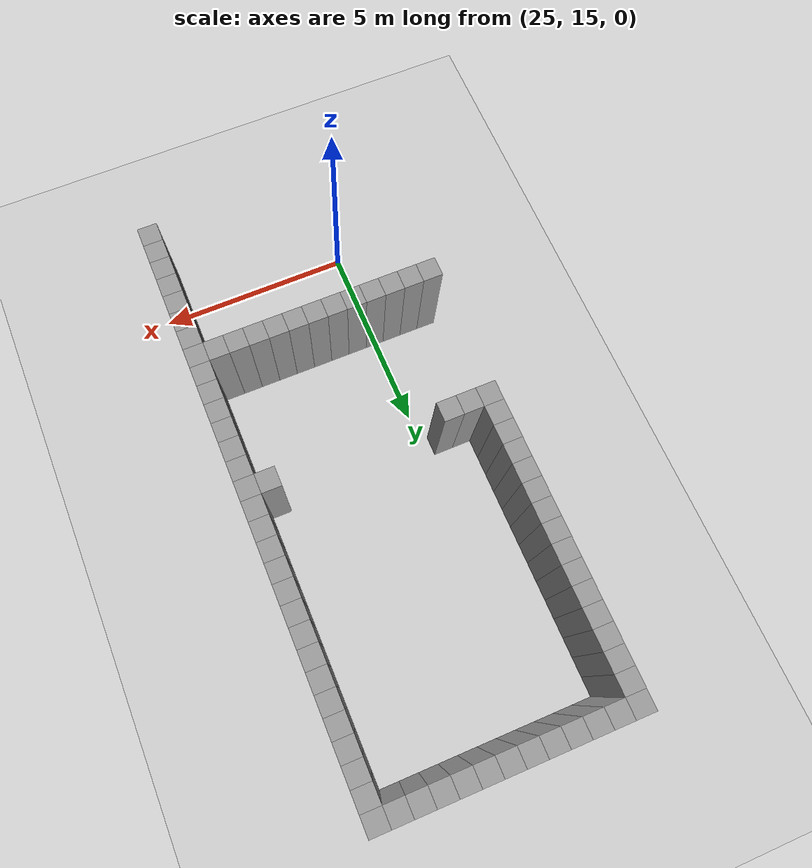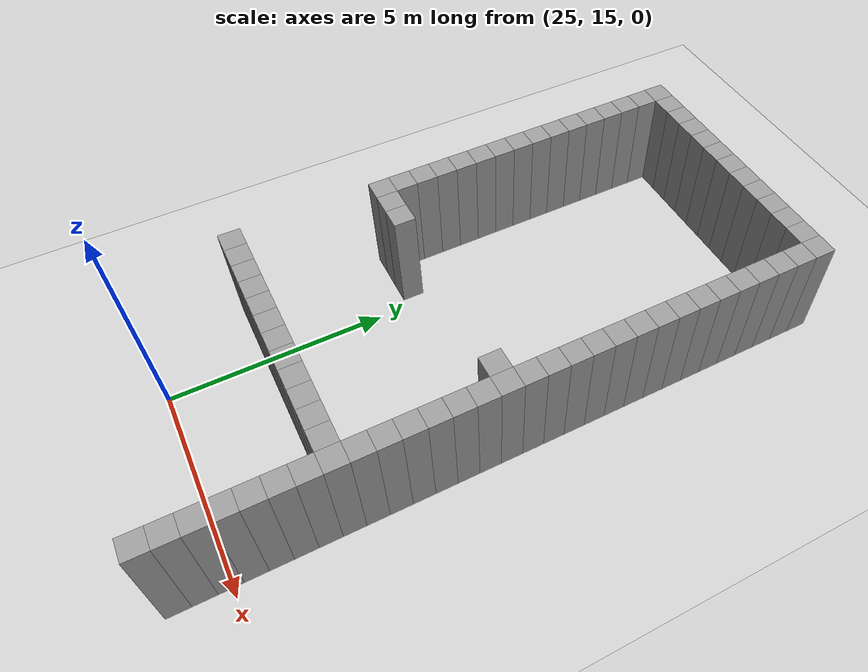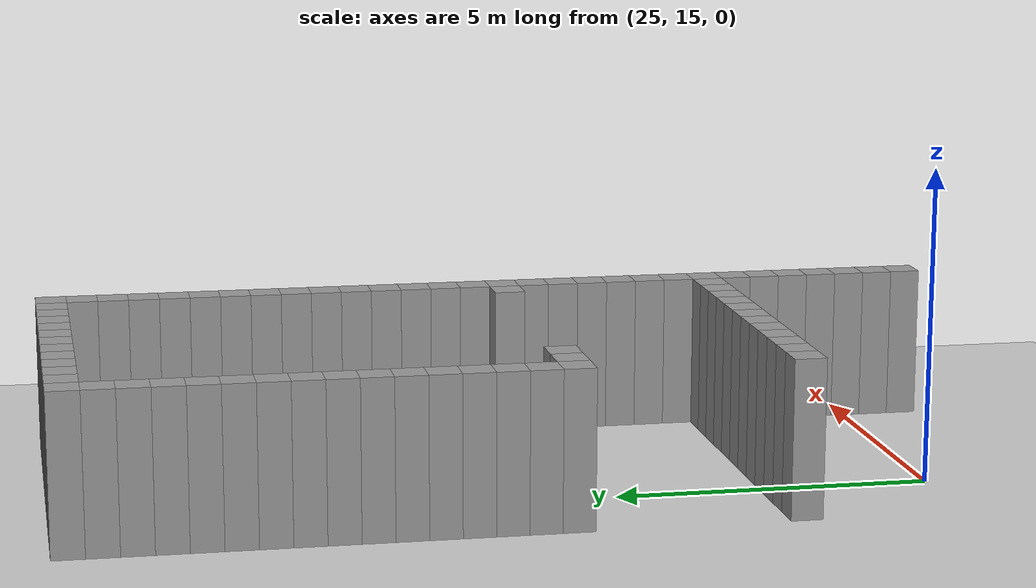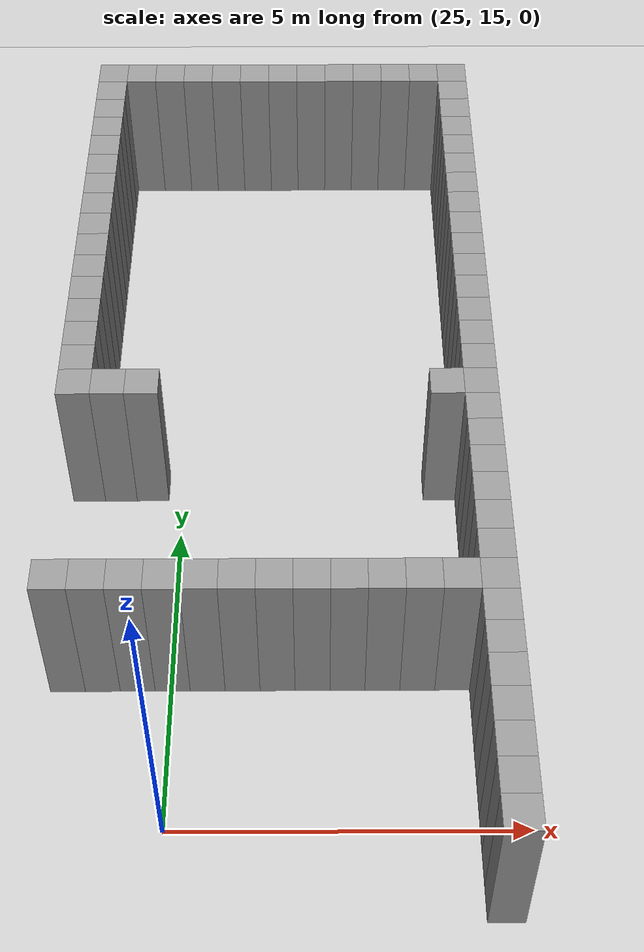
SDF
<sdf version="1.7">
 <world name="default">
  <model name="ground_plane">
   <static>1</static>
   <link name="link">
    <collision name="collision">
     <geometry><plane><normal>0 0 1</normal><size>100 100</size></plane></geometry>
     <surface>
      <contact><collide_bitmask>65535</collide_bitmask></contact>
      <friction><ode><mu>100</mu><mu2>50</mu2></ode></friction>
     </surface>
    </collision>
    <visual name="visual">
     <cast_shadows>0</cast_shadows>
     <geometry><plane><normal>0 0 1</normal><size>100 100</size></plane></geometry>
     <material>
      <script><uri>file://media/materials/scripts/gazebo.material</uri><name>Gazebo/Grey</name></script>
     </material>
    </visual>
   </link>
  </model>
  <model name="image1">
   <pose>-0.980925 -1.04264 0 0 -0 0</pose>
   <link name="Wall_373">
    <collision name="Wall_373_Collision">
     <geometry><box><size>0.5 0.5 2.5</size></box></geometry>
     <pose>0 0 1.25 0 -0 0</pose>
    </collision>
    <visual name="Wall_373_Visual">
     <pose>0 0 1.25 0 -0 0</pose>
     <geometry><box><size>0.5 0.5 2.5</size></box></geometry>
     <material>
      <script><uri>file://media/materials/scripts/gazebo.material</uri><name>Gazebo/Grey</name></script>
      <ambient>1 1 1 1</ambient>
     </material>
     <meta><layer>0</layer></meta>
    </visual>
    <pose>24.5 18.5 0 0 -0 0</pose>
   </link>
   <link name="Wall_374">
    <collision name="Wall_374_Collision">
     <geometry><box><size>0.5 0.5 2.5</size></box></geometry>
     <pose>0 0 1.25 0 -0 0</pose>
    </collision>
    <visual name="Wall_374_Visual">
     <pose>0 0 1.25 0 -0 0</pose>
     <geometry><box><size>0.5 0.5 2.5</size></box></geometry>
     <material>
      <script><uri>file://media/materials/scripts/gazebo.material</uri><name>Gazebo/Grey</name></script>
      <ambient>1 1 1 1</ambient>
     </material>
     <meta><layer>0</layer></meta>
    </visual>
    <pose>24.5 22 0 0 -0 0</pose>
   </link>
   <link name="Wall_375">
    <collision name="Wall_375_Collision">
     <geometry><box><size>0.5 0.5 2.5</size></box></geometry>
     <pose>0 0 1.25 0 -0 0</pose>
    </collision>
    <visual name="Wall_375_Visual">
     <pose>0 0 1.25 0 -0 0</pose>
     <geometry><box><size>0.5 0.5 2.5</size></box></geometry>
     <material>
      <script><uri>file://media/materials/scripts/gazebo.material</uri><name>Gazebo/Grey</name></script>
      <ambient>1 1 1 1</ambient>
     </material>
     <meta><layer>0</layer></meta>
    </visual>
    <pose>24.5 22.5 0 0 -0 0</pose>
   </link>
   <link name="Wall_376">
    <collision name="Wall_376_Collision">
     <geometry><box><size>0.5 0.5 2.5</size></box></geometry>
     <pose>0 0 1.25 0 -0 0</pose>
    </collision>
    <visual name="Wall_376_Visual">
     <pose>0 0 1.25 0 -0 0</pose>
     <geometry><box><size>0.5 0.5 2.5</size></box></geometry>
     <material>
      <script><uri>file://media/materials/scripts/gazebo.material</uri><name>Gazebo/Grey</name></script>
      <ambient>1 1 1 1</ambient>
     </material>
     <meta><layer>0</layer></meta>
    </visual>
    <pose>24.5 23 0 0 -0 0</pose>
   </link>
   <link name="Wall_377">
    <collision name="Wall_377_Collision">
     <geometry><box><size>0.5 0.5 2.5</size></box></geometry>
     <pose>0 0 1.25 0 -0 0</pose>
    </collision>
    <visual name="Wall_377_Visual">
     <pose>0 0 1.25 0 -0 0</pose>
     <geometry><box><size>0.5 0.5 2.5</size></box></geometry>
     <material>
      <script><uri>file://media/materials/scripts/gazebo.material</uri><name>Gazebo/Grey</name></script>
      <ambient>1 1 1 1</ambient>
     </material>
     <meta><layer>0</layer></meta>
    </visual>
    <pose>24.5 23.5 0 0 -0 0</pose>
   </link>
   <link name="Wall_378">
    <collision name="Wall_378_Collision">
     <geometry><box><size>0.5 0.5 2.5</size></box></geometry>
     <pose>0 0 1.25 0 -0 0</pose>
    </collision>
    <visual name="Wall_378_Visual">
     <pose>0 0 1.25 0 -0 0</pose>
     <geometry><box><size>0.5 0.5 2.5</size></box></geometry>
     <material>
      <script><uri>file://media/materials/scripts/gazebo.material</uri><name>Gazebo/Grey</name></script>
      <ambient>1 1 1 1</ambient>
     </material>
     <meta><layer>0</layer></meta>
    </visual>
    <pose>24.5 24 0 0 -0 0</pose>
   </link>
   <link name="Wall_379">
    <collision name="Wall_379_Collision">
     <geometry><box><size>0.5 0.5 2.5</size></box></geometry>
     <pose>0 0 1.25 0 -0 0</pose>
    </collision>
    <visual name="Wall_379_Visual">
     <pose>0 0 1.25 0 -0 0</pose>
     <geometry><box><size>0.5 0.5 2.5</size></box></geometry>
     <material>
      <script><uri>file://media/materials/scripts/gazebo.material</uri><name>Gazebo/Grey</name></script>
      <ambient>1 1 1 1</ambient>
     </material>
     <meta><layer>0</layer></meta>
    </visual>
    <pose>24.5 24.5 0 0 -0 0</pose>
   </link>
   <link name="Wall_380">
    <collision name="Wall_380_Collision">
     <geometry><box><size>0.5 0.5 2.5</size></box></geometry>
     <pose>0 0 1.25 0 -0 0</pose>
    </collision>
    <visual name="Wall_380_Visual">
     <pose>0 0 1.25 0 -0 0</pose>
     <geometry><box><size>0.5 0.5 2.5</size></box></geometry>
     <material>
      <script><uri>file://media/materials/scripts/gazebo.material</uri><name>Gazebo/Grey</name></script>
      <ambient>1 1 1 1</ambient>
     </material>
     <meta><layer>0</layer></meta>
    </visual>
    <pose>24.5 25 0 0 -0 0</pose>
   </link>
   <link name="Wall_381">
    <collision name="Wall_381_Collision">
     <geometry><box><size>0.5 0.5 2.5</size></box></geometry>
     <pose>0 0 1.25 0 -0 0</pose>
    </collision>
    <visual name="Wall_381_Visual">
     <pose>0 0 1.25 0 -0 0</pose>
     <geometry><box><size>0.5 0.5 2.5</size></box></geometry>
     <material>
      <script><uri>file://media/materials/scripts/gazebo.material</uri><name>Gazebo/Grey</name></script>
      <ambient>1 1 1 1</ambient>
     </material>
     <meta><layer>0</layer></meta>
    </visual>
    <pose>24.5 25.5 0 0 -0 0</pose>
   </link>
   <link name="Wall_382">
    <collision name="Wall_382_Collision">
     <geometry><box><size>0.5 0.5 2.5</size></box></geometry>
     <pose>0 0 1.25 0 -0 0</pose>
    </collision>
    <visual name="Wall_382_Visual">
     <pose>0 0 1.25 0 -0 0</pose>
     <geometry><box><size>0.5 0.5 2.5</size></box></geometry>
     <material>
      <script><uri>file://media/materials/scripts/gazebo.material</uri><name>Gazebo/Grey</name></script>
      <ambient>1 1 1 1</ambient>
     </material>
     <meta><layer>0</layer></meta>
    </visual>
    <pose>24.5 26 0 0 -0 0</pose>
   </link>
   <link name="Wall_383">
    <collision name="Wall_383_Collision">
     <geometry><box><size>0.5 0.5 2.5</size></box></geometry>
     <pose>0 0 1.25 0 -0 0</pose>
    </collision>
    <visual name="Wall_383_Visual">
     <pose>0 0 1.25 0 -0 0</pose>
     <geometry><box><size>0.5 0.5 2.5</size></box></geometry>
     <material>
      <script><uri>file://media/materials/scripts/gazebo.material</uri><name>Gazebo/Grey</name></script>
      <ambient>1 1 1 1</ambient>
     </material>
     <meta><layer>0</layer></meta>
    </visual>
    <pose>24.5 26.5 0 0 -0 0</pose>
   </link>
   <link name="Wall_384">
    <collision name="Wall_384_Collision">
     <geometry><box><size>0.5 0.5 2.5</size></box></geometry>
     <pose>0 0 1.25 0 -0 0</pose>
    </collision>
    <visual name="Wall_384_Visual">
     <pose>0 0 1.25 0 -0 0</pose>
     <geometry><box><size>0.5 0.5 2.5</size></box></geometry>
     <material>
      <script><uri>file://media/materials/scripts/gazebo.material</uri><name>Gazebo/Grey</name></script>
      <ambient>1 1 1 1</ambient>
     </material>
     <meta><layer>0</layer></meta>
    </visual>
    <pose>24.5 27 0 0 -0 0</pose>
   </link>
   <link name="Wall_385">
    <collision name="Wall_385_Collision">
     <geometry><box><size>0.5 0.5 2.5</size></box></geometry>
     <pose>0 0 1.25 0 -0 0</pose>
    </collision>
    <visual name="Wall_385_Visual">
     <pose>0 0 1.25 0 -0 0</pose>
     <geometry><box><size>0.5 0.5 2.5</size></box></geometry>
     <material>
      <script><uri>file://media/materials/scripts/gazebo.material</uri><name>Gazebo/Grey</name></script>
      <ambient>1 1 1 1</ambient>
     </material>
     <meta><layer>0</layer></meta>
    </visual>
    <pose>24.5 27.5 0 0 -0 0</pose>
   </link>
   <link name="Wall_386">
    <collision name="Wall_386_Collision">
     <geometry><box><size>0.5 0.5 2.5</size></box></geometry>
     <pose>0 0 1.25 0 -0 0</pose>
    </collision>
    <visual name="Wall_386_Visual">
     <pose>0 0 1.25 0 -0 0</pose>
     <geometry><box><size>0.5 0.5 2.5</size></box></geometry>
     <material>
      <script><uri>file://media/materials/scripts/gazebo.material</uri><name>Gazebo/Grey</name></script>
      <ambient>1 1 1 1</ambient>
     </material>
     <meta><layer>0</layer></meta>
    </visual>
    <pose>24.5 28 0 0 -0 0</pose>
   </link>
   <link name="Wall_387">
    <collision name="Wall_387_Collision">
     <geometry><box><size>0.5 0.5 2.5</size></box></geometry>
     <pose>0 0 1.25 0 -0 0</pose>
    </collision>
    <visual name="Wall_387_Visual">
     <pose>0 0 1.25 0 -0 0</pose>
     <geometry><box><size>0.5 0.5 2.5</size></box></geometry>
     <material>
      <script><uri>file://media/materials/scripts/gazebo.material</uri><name>Gazebo/Grey</name></script>
      <ambient>1 1 1 1</ambient>
     </material>
     <meta><layer>0</layer></meta>
    </visual>
    <pose>24.5 28.5 0 0 -0 0</pose>
   </link>
   <link name="Wall_388">
    <collision name="Wall_388_Collision">
     <geometry><box><size>0.5 0.5 2.5</size></box></geometry>
     <pose>0 0 1.25 0 -0 0</pose>
    </collision>
    <visual name="Wall_388_Visual">
     <pose>0 0 1.25 0 -0 0</pose>
     <geometry><box><size>0.5 0.5 2.5</size></box></geometry>
     <material>
      <script><uri>file://media/materials/scripts/gazebo.material</uri><name>Gazebo/Grey</name></script>
      <ambient>1 1 1 1</ambient>
     </material>
     <meta><layer>0</layer></meta>
    </visual>
    <pose>24.5 29 0 0 -0 0</pose>
   </link>
   <link name="Wall_389">
    <collision name="Wall_389_Collision">
     <geometry><box><size>0.5 0.5 2.5</size></box></geometry>
     <pose>0 0 1.25 0 -0 0</pose>
    </collision>
    <visual name="Wall_389_Visual">
     <pose>0 0 1.25 0 -0 0</pose>
     <geometry><box><size>0.5 0.5 2.5</size></box></geometry>
     <material>
      <script><uri>file://media/materials/scripts/gazebo.material</uri><name>Gazebo/Grey</name></script>
      <ambient>1 1 1 1</ambient>
     </material>
     <meta><layer>0</layer></meta>
    </visual>
    <pose>24.5 29.5 0 0 -0 0</pose>
   </link>
   <link name="Wall_393">
    <collision name="Wall_393_Collision">
     <geometry><box><size>0.5 0.5 2.5</size></box></geometry>
     <pose>0 0 1.25 0 -0 0</pose>
    </collision>
    <visual name="Wall_393_Visual">
     <pose>0 0 1.25 0 -0 0</pose>
     <geometry><box><size>0.5 0.5 2.5</size></box></geometry>
     <material>
      <script><uri>file://media/materials/scripts/gazebo.material</uri><name>Gazebo/Grey</name></script>
      <ambient>1 1 1 1</ambient>
     </material>
     <meta><layer>0</layer></meta>
    </visual>
    <pose>25 18.5 0 0 -0 0</pose>
   </link>
   <link name="Wall_394">
    <collision name="Wall_394_Collision">
     <geometry><box><size>0.5 0.5 2.5</size></box></geometry>
     <pose>0 0 1.25 0 -0 0</pose>
    </collision>
    <visual name="Wall_394_Visual">
     <pose>0 0 1.25 0 -0 0</pose>
     <geometry><box><size>0.5 0.5 2.5</size></box></geometry>
     <material>
      <script><uri>file://media/materials/scripts/gazebo.material</uri><name>Gazebo/Grey</name></script>
      <ambient>1 1 1 1</ambient>
     </material>
     <meta><layer>0</layer></meta>
    </visual>
    <pose>25 22 0 0 -0 0</pose>
   </link>
   <link name="Wall_395">
    <collision name="Wall_395_Collision">
     <geometry><box><size>0.5 0.5 2.5</size></box></geometry>
     <pose>0 0 1.25 0 -0 0</pose>
    </collision>
    <visual name="Wall_395_Visual">
     <pose>0 0 1.25 0 -0 0</pose>
     <geometry><box><size>0.5 0.5 2.5</size></box></geometry>
     <material>
      <script><uri>file://media/materials/scripts/gazebo.material</uri><name>Gazebo/Grey</name></script>
      <ambient>1 1 1 1</ambient>
     </material>
     <meta><layer>0</layer></meta>
    </visual>
    <pose>25 29.5 0 0 -0 0</pose>
   </link>
   <link name="Wall_399">
    <collision name="Wall_399_Collision">
     <geometry><box><size>0.5 0.5 2.5</size></box></geometry>
     <pose>0 0 1.25 0 -0 0</pose>
    </collision>
    <visual name="Wall_399_Visual">
     <pose>0 0 1.25 0 -0 0</pose>
     <geometry><box><size>0.5 0.5 2.5</size></box></geometry>
     <material>
      <script><uri>file://media/materials/scripts/gazebo.material</uri><name>Gazebo/Grey</name></script>
      <ambient>1 1 1 1</ambient>
     </material>
     <meta><layer>0</layer></meta>
    </visual>
    <pose>25.5 18.5 0 0 -0 0</pose>
   </link>
   <link name="Wall_400">
    <collision name="Wall_400_Collision">
     <geometry><box><size>0.5 0.5 2.5</size></box></geometry>
     <pose>0 0 1.25 0 -0 0</pose>
    </collision>
    <visual name="Wall_400_Visual">
     <pose>0 0 1.25 0 -0 0</pose>
     <geometry><box><size>0.5 0.5 2.5</size></box></geometry>
     <material>
      <script><uri>file://media/materials/scripts/gazebo.material</uri><name>Gazebo/Grey</name></script>
      <ambient>1 1 1 1</ambient>
     </material>
     <meta><layer>0</layer></meta>
    </visual>
    <pose>25.5 22 0 0 -0 0</pose>
   </link>
   <link name="Wall_401">
    <collision name="Wall_401_Collision">
     <geometry><box><size>0.5 0.5 2.5</size></box></geometry>
     <pose>0 0 1.25 0 -0 0</pose>
    </collision>
    <visual name="Wall_401_Visual">
     <pose>0 0 1.25 0 -0 0</pose>
     <geometry><box><size>0.5 0.5 2.5</size></box></geometry>
     <material>
      <script><uri>file://media/materials/scripts/gazebo.material</uri><name>Gazebo/Grey</name></script>
      <ambient>1 1 1 1</ambient>
     </material>
     <meta><layer>0</layer></meta>
    </visual>
    <pose>25.5 29.5 0 0 -0 0</pose>
   </link>
   <link name="Wall_405">
    <collision name="Wall_405_Collision">
     <geometry><box><size>0.5 0.5 2.5</size></box></geometry>
     <pose>0 0 1.25 0 -0 0</pose>
    </collision>
    <visual name="Wall_405_Visual">
     <pose>0 0 1.25 0 -0 0</pose>
     <geometry><box><size>0.5 0.5 2.5</size></box></geometry>
     <material>
      <script><uri>file://media/materials/scripts/gazebo.material</uri><name>Gazebo/Grey</name></script>
      <ambient>1 1 1 1</ambient>
     </material>
     <meta><layer>0</layer></meta>
    </visual>
    <pose>26 18.5 0 0 -0 0</pose>
   </link>
   <link name="Wall_406">
    <collision name="Wall_406_Collision">
     <geometry><box><size>0.5 0.5 2.5</size></box></geometry>
     <pose>0 0 1.25 0 -0 0</pose>
    </collision>
    <visual name="Wall_406_Visual">
     <pose>0 0 1.25 0 -0 0</pose>
     <geometry><box><size>0.5 0.5 2.5</size></box></geometry>
     <material>
      <script><uri>file://media/materials/scripts/gazebo.material</uri><name>Gazebo/Grey</name></script>
      <ambient>1 1 1 1</ambient>
     </material>
     <meta><layer>0</layer></meta>
    </visual>
    <pose>26 29.5 0 0 -0 0</pose>
   </link>
   <link name="Wall_410">
    <collision name="Wall_410_Collision">
     <geometry><box><size>0.5 0.5 2.5</size></box></geometry>
     <pose>0 0 1.25 0 -0 0</pose>
    </collision>
    <visual name="Wall_410_Visual">
     <pose>0 0 1.25 0 -0 0</pose>
     <geometry><box><size>0.5 0.5 2.5</size></box></geometry>
     <material>
      <script><uri>file://media/materials/scripts/gazebo.material</uri><name>Gazebo/Grey</name></script>
      <ambient>1 1 1 1</ambient>
     </material>
     <meta><layer>0</layer></meta>
    </visual>
    <pose>26.5 18.5 0 0 -0 0</pose>
   </link>
   <link name="Wall_411">
    <collision name="Wall_411_Collision">
     <geometry><box><size>0.5 0.5 2.5</size></box></geometry>
     <pose>0 0 1.25 0 -0 0</pose>
    </collision>
    <visual name="Wall_411_Visual">
     <pose>0 0 1.25 0 -0 0</pose>
     <geometry><box><size>0.5 0.5 2.5</size></box></geometry>
     <material>
      <script><uri>file://media/materials/scripts/gazebo.material</uri><name>Gazebo/Grey</name></script>
      <ambient>1 1 1 1</ambient>
     </material>
     <meta><layer>0</layer></meta>
    </visual>
    <pose>26.5 29.5 0 0 -0 0</pose>
   </link>
   <link name="Wall_415">
    <collision name="Wall_415_Collision">
     <geometry><box><size>0.5 0.5 2.5</size></box></geometry>
     <pose>0 0 1.25 0 -0 0</pose>
    </collision>
    <visual name="Wall_415_Visual">
     <pose>0 0 1.25 0 -0 0</pose>
     <geometry><box><size>0.5 0.5 2.5</size></box></geometry>
     <material>
      <script><uri>file://media/materials/scripts/gazebo.material</uri><name>Gazebo/Grey</name></script>
      <ambient>1 1 1 1</ambient>
     </material>
     <meta><layer>0</layer></meta>
    </visual>
    <pose>27 18.5 0 0 -0 0</pose>
   </link>
   <link name="Wall_416">
    <collision name="Wall_416_Collision">
     <geometry><box><size>0.5 0.5 2.5</size></box></geometry>
     <pose>0 0 1.25 0 -0 0</pose>
    </collision>
    <visual name="Wall_416_Visual">
     <pose>0 0 1.25 0 -0 0</pose>
     <geometry><box><size>0.5 0.5 2.5</size></box></geometry>
     <material>
      <script><uri>file://media/materials/scripts/gazebo.material</uri><name>Gazebo/Grey</name></script>
      <ambient>1 1 1 1</ambient>
     </material>
     <meta><layer>0</layer></meta>
    </visual>
    <pose>27 29.5 0 0 -0 0</pose>
   </link>
   <link name="Wall_420">
    <collision name="Wall_420_Collision">
     <geometry><box><size>0.5 0.5 2.5</size></box></geometry>
     <pose>0 0 1.25 0 -0 0</pose>
    </collision>
    <visual name="Wall_420_Visual">
     <pose>0 0 1.25 0 -0 0</pose>
     <geometry><box><size>0.5 0.5 2.5</size></box></geometry>
     <material>
      <script><uri>file://media/materials/scripts/gazebo.material</uri><name>Gazebo/Grey</name></script>
      <ambient>1 1 1 1</ambient>
     </material>
     <meta><layer>0</layer></meta>
    </visual>
    <pose>27.5 18.5 0 0 -0 0</pose>
   </link>
   <link name="Wall_421">
    <collision name="Wall_421_Collision">
     <geometry><box><size>0.5 0.5 2.5</size></box></geometry>
     <pose>0 0 1.25 0 -0 0</pose>
    </collision>
    <visual name="Wall_421_Visual">
     <pose>0 0 1.25 0 -0 0</pose>
     <geometry><box><size>0.5 0.5 2.5</size></box></geometry>
     <material>
      <script><uri>file://media/materials/scripts/gazebo.material</uri><name>Gazebo/Grey</name></script>
      <ambient>1 1 1 1</ambient>
     </material>
     <meta><layer>0</layer></meta>
    </visual>
    <pose>27.5 29.5 0 0 -0 0</pose>
   </link>
   <link name="Wall_425">
    <collision name="Wall_425_Collision">
     <geometry><box><size>0.5 0.5 2.5</size></box></geometry>
     <pose>0 0 1.25 0 -0 0</pose>
    </collision>
    <visual name="Wall_425_Visual">
     <pose>0 0 1.25 0 -0 0</pose>
     <geometry><box><size>0.5 0.5 2.5</size></box></geometry>
     <material>
      <script><uri>file://media/materials/scripts/gazebo.material</uri><name>Gazebo/Grey</name></script>
      <ambient>1 1 1 1</ambient>
     </material>
     <meta><layer>0</layer></meta>
    </visual>
    <pose>28 18.5 0 0 -0 0</pose>
   </link>
   <link name="Wall_426">
    <collision name="Wall_426_Collision">
     <geometry><box><size>0.5 0.5 2.5</size></box></geometry>
     <pose>0 0 1.25 0 -0 0</pose>
    </collision>
    <visual name="Wall_426_Visual">
     <pose>0 0 1.25 0 -0 0</pose>
     <geometry><box><size>0.5 0.5 2.5</size></box></geometry>
     <material>
      <script><uri>file://media/materials/scripts/gazebo.material</uri><name>Gazebo/Grey</name></script>
      <ambient>1 1 1 1</ambient>
     </material>
     <meta><layer>0</layer></meta>
    </visual>
    <pose>28 29.5 0 0 -0 0</pose>
   </link>
   <link name="Wall_430">
    <collision name="Wall_430_Collision">
     <geometry><box><size>0.5 0.5 2.5</size></box></geometry>
     <pose>0 0 1.25 0 -0 0</pose>
    </collision>
    <visual name="Wall_430_Visual">
     <pose>0 0 1.25 0 -0 0</pose>
     <geometry><box><size>0.5 0.5 2.5</size></box></geometry>
     <material>
      <script><uri>file://media/materials/scripts/gazebo.material</uri><name>Gazebo/Grey</name></script>
      <ambient>1 1 1 1</ambient>
     </material>
     <meta><layer>0</layer></meta>
    </visual>
    <pose>28.5 18.5 0 0 -0 0</pose>
   </link>
   <link name="Wall_431">
    <collision name="Wall_431_Collision">
     <geometry><box><size>0.5 0.5 2.5</size></box></geometry>
     <pose>0 0 1.25 0 -0 0</pose>
    </collision>
    <visual name="Wall_431_Visual">
     <pose>0 0 1.25 0 -0 0</pose>
     <geometry><box><size>0.5 0.5 2.5</size></box></geometry>
     <material>
      <script><uri>file://media/materials/scripts/gazebo.material</uri><name>Gazebo/Grey</name></script>
      <ambient>1 1 1 1</ambient>
     </material>
     <meta><layer>0</layer></meta>
    </visual>
    <pose>28.5 29.5 0 0 -0 0</pose>
   </link>
   <link name="Wall_435">
    <collision name="Wall_435_Collision">
     <geometry><box><size>0.5 0.5 2.5</size></box></geometry>
     <pose>0 0 1.25 0 -0 0</pose>
    </collision>
    <visual name="Wall_435_Visual">
     <pose>0 0 1.25 0 -0 0</pose>
     <geometry><box><size>0.5 0.5 2.5</size></box></geometry>
     <material>
      <script><uri>file://media/materials/scripts/gazebo.material</uri><name>Gazebo/Grey</name></script>
      <ambient>1 1 1 1</ambient>
     </material>
     <meta><layer>0</layer></meta>
    </visual>
    <pose>29 18.5 0 0 -0 0</pose>
   </link>
   <link name="Wall_436">
    <collision name="Wall_436_Collision">
     <geometry><box><size>0.5 0.5 2.5</size></box></geometry>
     <pose>0 0 1.25 0 -0 0</pose>
    </collision>
    <visual name="Wall_436_Visual">
     <pose>0 0 1.25 0 -0 0</pose>
     <geometry><box><size>0.5 0.5 2.5</size></box></geometry>
     <material>
      <script><uri>file://media/materials/scripts/gazebo.material</uri><name>Gazebo/Grey</name></script>
      <ambient>1 1 1 1</ambient>
     </material>
     <meta><layer>0</layer></meta>
    </visual>
    <pose>29 29.5 0 0 -0 0</pose>
   </link>
   <link name="Wall_440">
    <collision name="Wall_440_Collision">
     <geometry><box><size>0.5 0.5 2.5</size></box></geometry>
     <pose>0 0 1.25 0 -0 0</pose>
    </collision>
    <visual name="Wall_440_Visual">
     <pose>0 0 1.25 0 -0 0</pose>
     <geometry><box><size>0.5 0.5 2.5</size></box></geometry>
     <material>
      <script><uri>file://media/materials/scripts/gazebo.material</uri><name>Gazebo/Grey</name></script>
      <ambient>1 1 1 1</ambient>
     </material>
     <meta><layer>0</layer></meta>
    </visual>
    <pose>29.5 18.5 0 0 -0 0</pose>
   </link>
   <link name="Wall_441">
    <collision name="Wall_441_Collision">
     <geometry><box><size>0.5 0.5 2.5</size></box></geometry>
     <pose>0 0 1.25 0 -0 0</pose>
    </collision>
    <visual name="Wall_441_Visual">
     <pose>0 0 1.25 0 -0 0</pose>
     <geometry><box><size>0.5 0.5 2.5</size></box></geometry>
     <material>
      <script><uri>file://media/materials/scripts/gazebo.material</uri><name>Gazebo/Grey</name></script>
      <ambient>1 1 1 1</ambient>
     </material>
     <meta><layer>0</layer></meta>
    </visual>
    <pose>29.5 29.5 0 0 -0 0</pose>
   </link>
   <link name="Wall_445">
    <collision name="Wall_445_Collision">
     <geometry><box><size>0.5 0.5 2.5</size></box></geometry>
     <pose>0 0 1.25 0 -0 0</pose>
    </collision>
    <visual name="Wall_445_Visual">
     <pose>0 0 1.25 0 -0 0</pose>
     <geometry><box><size>0.5 0.5 2.5</size></box></geometry>
     <material>
      <script><uri>file://media/materials/scripts/gazebo.material</uri><name>Gazebo/Grey</name></script>
      <ambient>1 1 1 1</ambient>
     </material>
     <meta><layer>0</layer></meta>
    </visual>
    <pose>30 18.5 0 0 -0 0</pose>
   </link>
   <link name="Wall_446">
    <collision name="Wall_446_Collision">
     <geometry><box><size>0.5 0.5 2.5</size></box></geometry>
     <pose>0 0 1.25 0 -0 0</pose>
    </collision>
    <visual name="Wall_446_Visual">
     <pose>0 0 1.25 0 -0 0</pose>
     <geometry><box><size>0.5 0.5 2.5</size></box></geometry>
     <material>
      <script><uri>file://media/materials/scripts/gazebo.material</uri><name>Gazebo/Grey</name></script>
      <ambient>1 1 1 1</ambient>
     </material>
     <meta><layer>0</layer></meta>
    </visual>
    <pose>30 22 0 0 -0 0</pose>
   </link>
   <link name="Wall_447">
    <collision name="Wall_447_Collision">
     <geometry><box><size>0.5 0.5 2.5</size></box></geometry>
     <pose>0 0 1.25 0 -0 0</pose>
    </collision>
    <visual name="Wall_447_Visual">
     <pose>0 0 1.25 0 -0 0</pose>
     <geometry><box><size>0.5 0.5 2.5</size></box></geometry>
     <material>
      <script><uri>file://media/materials/scripts/gazebo.material</uri><name>Gazebo/Grey</name></script>
      <ambient>1 1 1 1</ambient>
     </material>
     <meta><layer>0</layer></meta>
    </visual>
    <pose>30 29.5 0 0 -0 0</pose>
   </link>
   <link name="Wall_478">
    <collision name="Wall_478_Collision">
     <geometry><box><size>0.5 0.5 2.5</size></box></geometry>
     <pose>0 0 1.25 0 -0 0</pose>
    </collision>
    <visual name="Wall_478_Visual">
     <pose>0 0 1.25 0 -0 0</pose>
     <geometry><box><size>0.5 0.5 2.5</size></box></geometry>
     <material>
      <script><uri>file://media/materials/scripts/gazebo.material</uri><name>Gazebo/Grey</name></script>
      <ambient>1 1 1 1</ambient>
     </material>
     <meta><layer>0</layer></meta>
    </visual>
    <pose>30.5 15 0 0 -0 0</pose>
   </link>
   <link name="Wall_479">
    <collision name="Wall_479_Collision">
     <geometry><box><size>0.5 0.5 2.5</size></box></geometry>
     <pose>0 0 1.25 0 -0 0</pose>
    </collision>
    <visual name="Wall_479_Visual">
     <pose>0 0 1.25 0 -0 0</pose>
     <geometry><box><size>0.5 0.5 2.5</size></box></geometry>
     <material>
      <script><uri>file://media/materials/scripts/gazebo.material</uri><name>Gazebo/Grey</name></script>
      <ambient>1 1 1 1</ambient>
     </material>
     <meta><layer>0</layer></meta>
    </visual>
    <pose>30.5 15.5 0 0 -0 0</pose>
   </link>
   <link name="Wall_480">
    <collision name="Wall_480_Collision">
     <geometry><box><size>0.5 0.5 2.5</size></box></geometry>
     <pose>0 0 1.25 0 -0 0</pose>
    </collision>
    <visual name="Wall_480_Visual">
     <pose>0 0 1.25 0 -0 0</pose>
     <geometry><box><size>0.5 0.5 2.5</size></box></geometry>
     <material>
      <script><uri>file://media/materials/scripts/gazebo.material</uri><name>Gazebo/Grey</name></script>
      <ambient>1 1 1 1</ambient>
     </material>
     <meta><layer>0</layer></meta>
    </visual>
    <pose>30.5 16 0 0 -0 0</pose>
   </link>
   <link name="Wall_481">
    <collision name="Wall_481_Collision">
     <geometry><box><size>0.5 0.5 2.5</size></box></geometry>
     <pose>0 0 1.25 0 -0 0</pose>
    </collision>
    <visual name="Wall_481_Visual">
     <pose>0 0 1.25 0 -0 0</pose>
     <geometry><box><size>0.5 0.5 2.5</size></box></geometry>
     <material>
      <script><uri>file://media/materials/scripts/gazebo.material</uri><name>Gazebo/Grey</name></script>
      <ambient>1 1 1 1</ambient>
     </material>
     <meta><layer>0</layer></meta>
    </visual>
    <pose>30.5 16.5 0 0 -0 0</pose>
   </link>
   <link name="Wall_482">
    <collision name="Wall_482_Collision">
     <geometry><box><size>0.5 0.5 2.5</size></box></geometry>
     <pose>0 0 1.25 0 -0 0</pose>
    </collision>
    <visual name="Wall_482_Visual">
     <pose>0 0 1.25 0 -0 0</pose>
     <geometry><box><size>0.5 0.5 2.5</size></box></geometry>
     <material>
      <script><uri>file://media/materials/scripts/gazebo.material</uri><name>Gazebo/Grey</name></script>
      <ambient>1 1 1 1</ambient>
     </material>
     <meta><layer>0</layer></meta>
    </visual>
    <pose>30.5 17 0 0 -0 0</pose>
   </link>
   <link name="Wall_483">
    <collision name="Wall_483_Collision">
     <geometry><box><size>0.5 0.5 2.5</size></box></geometry>
     <pose>0 0 1.25 0 -0 0</pose>
    </collision>
    <visual name="Wall_483_Visual">
     <pose>0 0 1.25 0 -0 0</pose>
     <geometry><box><size>0.5 0.5 2.5</size></box></geometry>
     <material>
      <script><uri>file://media/materials/scripts/gazebo.material</uri><name>Gazebo/Grey</name></script>
      <ambient>1 1 1 1</ambient>
     </material>
     <meta><layer>0</layer></meta>
    </visual>
    <pose>30.5 17.5 0 0 -0 0</pose>
   </link>
   <link name="Wall_484">
    <collision name="Wall_484_Collision">
     <geometry><box><size>0.5 0.5 2.5</size></box></geometry>
     <pose>0 0 1.25 0 -0 0</pose>
    </collision>
    <visual name="Wall_484_Visual">
     <pose>0 0 1.25 0 -0 0</pose>
     <geometry><box><size>0.5 0.5 2.5</size></box></geometry>
     <material>
      <script><uri>file://media/materials/scripts/gazebo.material</uri><name>Gazebo/Grey</name></script>
      <ambient>1 1 1 1</ambient>
     </material>
     <meta><layer>0</layer></meta>
    </visual>
    <pose>30.5 18 0 0 -0 0</pose>
   </link>
   <link name="Wall_485">
    <collision name="Wall_485_Collision">
     <geometry><box><size>0.5 0.5 2.5</size></box></geometry>
     <pose>0 0 1.25 0 -0 0</pose>
    </collision>
    <visual name="Wall_485_Visual">
     <pose>0 0 1.25 0 -0 0</pose>
     <geometry><box><size>0.5 0.5 2.5</size></box></geometry>
     <material>
      <script><uri>file://media/materials/scripts/gazebo.material</uri><name>Gazebo/Grey</name></script>
      <ambient>1 1 1 1</ambient>
     </material>
     <meta><layer>0</layer></meta>
    </visual>
    <pose>30.5 18.5 0 0 -0 0</pose>
   </link>
   <link name="Wall_486">
    <collision name="Wall_486_Collision">
     <geometry><box><size>0.5 0.5 2.5</size></box></geometry>
     <pose>0 0 1.25 0 -0 0</pose>
    </collision>
    <visual name="Wall_486_Visual">
     <pose>0 0 1.25 0 -0 0</pose>
     <geometry><box><size>0.5 0.5 2.5</size></box></geometry>
     <material>
      <script><uri>file://media/materials/scripts/gazebo.material</uri><name>Gazebo/Grey</name></script>
      <ambient>1 1 1 1</ambient>
     </material>
     <meta><layer>0</layer></meta>
    </visual>
    <pose>30.5 19 0 0 -0 0</pose>
   </link>
   <link name="Wall_487">
    <collision name="Wall_487_Collision">
     <geometry><box><size>0.5 0.5 2.5</size></box></geometry>
     <pose>0 0 1.25 0 -0 0</pose>
    </collision>
    <visual name="Wall_487_Visual">
     <pose>0 0 1.25 0 -0 0</pose>
     <geometry><box><size>0.5 0.5 2.5</size></box></geometry>
     <material>
      <script><uri>file://media/materials/scripts/gazebo.material</uri><name>Gazebo/Grey</name></script>
      <ambient>1 1 1 1</ambient>
     </material>
     <meta><layer>0</layer></meta>
    </visual>
    <pose>30.5 19.5 0 0 -0 0</pose>
   </link>
   <link name="Wall_488">
    <collision name="Wall_488_Collision">
     <geometry><box><size>0.5 0.5 2.5</size></box></geometry>
     <pose>0 0 1.25 0 -0 0</pose>
    </collision>
    <visual name="Wall_488_Visual">
     <pose>0 0 1.25 0 -0 0</pose>
     <geometry><box><size>0.5 0.5 2.5</size></box></geometry>
     <material>
      <script><uri>file://media/materials/scripts/gazebo.material</uri><name>Gazebo/Grey</name></script>
      <ambient>1 1 1 1</ambient>
     </material>
     <meta><layer>0</layer></meta>
    </visual>
    <pose>30.5 20 0 0 -0 0</pose>
   </link>
   <link name="Wall_489">
    <collision name="Wall_489_Collision">
     <geometry><box><size>0.5 0.5 2.5</size></box></geometry>
     <pose>0 0 1.25 0 -0 0</pose>
    </collision>
    <visual name="Wall_489_Visual">
     <pose>0 0 1.25 0 -0 0</pose>
     <geometry><box><size>0.5 0.5 2.5</size></box></geometry>
     <material>
      <script><uri>file://media/materials/scripts/gazebo.material</uri><name>Gazebo/Grey</name></script>
      <ambient>1 1 1 1</ambient>
     </material>
     <meta><layer>0</layer></meta>
    </visual>
    <pose>30.5 20.5 0 0 -0 0</pose>
   </link>
   <link name="Wall_490">
    <collision name="Wall_490_Collision">
     <geometry><box><size>0.5 0.5 2.5</size></box></geometry>
     <pose>0 0 1.25 0 -0 0</pose>
    </collision>
    <visual name="Wall_490_Visual">
     <pose>0 0 1.25 0 -0 0</pose>
     <geometry><box><size>0.5 0.5 2.5</size></box></geometry>
     <material>
      <script><uri>file://media/materials/scripts/gazebo.material</uri><name>Gazebo/Grey</name></script>
      <ambient>1 1 1 1</ambient>
     </material>
     <meta><layer>0</layer></meta>
    </visual>
    <pose>30.5 21 0 0 -0 0</pose>
   </link>
   <link name="Wall_491">
    <collision name="Wall_491_Collision">
     <geometry><box><size>0.5 0.5 2.5</size></box></geometry>
     <pose>0 0 1.25 0 -0 0</pose>
    </collision>
    <visual name="Wall_491_Visual">
     <pose>0 0 1.25 0 -0 0</pose>
     <geometry><box><size>0.5 0.5 2.5</size></box></geometry>
     <material>
      <script><uri>file://media/materials/scripts/gazebo.material</uri><name>Gazebo/Grey</name></script>
      <ambient>1 1 1 1</ambient>
     </material>
     <meta><layer>0</layer></meta>
    </visual>
    <pose>30.5 21.5 0 0 -0 0</pose>
   </link>
   <link name="Wall_492">
    <collision name="Wall_492_Collision">
     <geometry><box><size>0.5 0.5 2.5</size></box></geometry>
     <pose>0 0 1.25 0 -0 0</pose>
    </collision>
    <visual name="Wall_492_Visual">
     <pose>0 0 1.25 0 -0 0</pose>
     <geometry><box><size>0.5 0.5 2.5</size></box></geometry>
     <material>
      <script><uri>file://media/materials/scripts/gazebo.material</uri><name>Gazebo/Grey</name></script>
      <ambient>1 1 1 1</ambient>
     </material>
     <meta><layer>0</layer></meta>
    </visual>
    <pose>30.5 22 0 0 -0 0</pose>
   </link>
   <link name="Wall_493">
    <collision name="Wall_493_Collision">
     <geometry><box><size>0.5 0.5 2.5</size></box></geometry>
     <pose>0 0 1.25 0 -0 0</pose>
    </collision>
    <visual name="Wall_493_Visual">
     <pose>0 0 1.25 0 -0 0</pose>
     <geometry><box><size>0.5 0.5 2.5</size></box></geometry>
     <material>
      <script><uri>file://media/materials/scripts/gazebo.material</uri><name>Gazebo/Grey</name></script>
      <ambient>1 1 1 1</ambient>
     </material>
     <meta><layer>0</layer></meta>
    </visual>
    <pose>30.5 22.5 0 0 -0 0</pose>
   </link>
   <link name="Wall_494">
    <collision name="Wall_494_Collision">
     <geometry><box><size>0.5 0.5 2.5</size></box></geometry>
     <pose>0 0 1.25 0 -0 0</pose>
    </collision>
    <visual name="Wall_494_Visual">
     <pose>0 0 1.25 0 -0 0</pose>
     <geometry><box><size>0.5 0.5 2.5</size></box></geometry>
     <material>
      <script><uri>file://media/materials/scripts/gazebo.material</uri><name>Gazebo/Grey</name></script>
      <ambient>1 1 1 1</ambient>
     </material>
     <meta><layer>0</layer></meta>
    </visual>
    <pose>30.5 23 0 0 -0 0</pose>
   </link>
   <link name="Wall_495">
    <collision name="Wall_495_Collision">
     <geometry><box><size>0.5 0.5 2.5</size></box></geometry>
     <pose>0 0 1.25 0 -0 0</pose>
    </collision>
    <visual name="Wall_495_Visual">
     <pose>0 0 1.25 0 -0 0</pose>
     <geometry><box><size>0.5 0.5 2.5</size></box></geometry>
     <material>
      <script><uri>file://media/materials/scripts/gazebo.material</uri><name>Gazebo/Grey</name></script>
      <ambient>1 1 1 1</ambient>
     </material>
     <meta><layer>0</layer></meta>
    </visual>
    <pose>30.5 23.5 0 0 -0 0</pose>
   </link>
   <link name="Wall_496">
    <collision name="Wall_496_Collision">
     <geometry><box><size>0.5 0.5 2.5</size></box></geometry>
     <pose>0 0 1.25 0 -0 0</pose>
    </collision>
    <visual name="Wall_496_Visual">
     <pose>0 0 1.25 0 -0 0</pose>
     <geometry><box><size>0.5 0.5 2.5</size></box></geometry>
     <material>
      <script><uri>file://media/materials/scripts/gazebo.material</uri><name>Gazebo/Grey</name></script>
      <ambient>1 1 1 1</ambient>
     </material>
     <meta><layer>0</layer></meta>
    </visual>
    <pose>30.5 24 0 0 -0 0</pose>
   </link>
   <link name="Wall_497">
    <collision name="Wall_497_Collision">
     <geometry><box><size>0.5 0.5 2.5</size></box></geometry>
     <pose>0 0 1.25 0 -0 0</pose>
    </collision>
    <visual name="Wall_497_Visual">
     <pose>0 0 1.25 0 -0 0</pose>
     <geometry><box><size>0.5 0.5 2.5</size></box></geometry>
     <material>
      <script><uri>file://media/materials/scripts/gazebo.material</uri><name>Gazebo/Grey</name></script>
      <ambient>1 1 1 1</ambient>
     </material>
     <meta><layer>0</layer></meta>
    </visual>
    <pose>30.5 24.5 0 0 -0 0</pose>
   </link>
   <link name="Wall_498">
    <collision name="Wall_498_Collision">
     <geometry><box><size>0.5 0.5 2.5</size></box></geometry>
     <pose>0 0 1.25 0 -0 0</pose>
    </collision>
    <visual name="Wall_498_Visual">
     <pose>0 0 1.25 0 -0 0</pose>
     <geometry><box><size>0.5 0.5 2.5</size></box></geometry>
     <material>
      <script><uri>file://media/materials/scripts/gazebo.material</uri><name>Gazebo/Grey</name></script>
      <ambient>1 1 1 1</ambient>
     </material>
     <meta><layer>0</layer></meta>
    </visual>
    <pose>30.5 25 0 0 -0 0</pose>
   </link>
   <link name="Wall_499">
    <collision name="Wall_499_Collision">
     <geometry><box><size>0.5 0.5 2.5</size></box></geometry>
     <pose>0 0 1.25 0 -0 0</pose>
    </collision>
    <visual name="Wall_499_Visual">
     <pose>0 0 1.25 0 -0 0</pose>
     <geometry><box><size>0.5 0.5 2.5</size></box></geometry>
     <material>
      <script><uri>file://media/materials/scripts/gazebo.material</uri><name>Gazebo/Grey</name></script>
      <ambient>1 1 1 1</ambient>
     </material>
     <meta><layer>0</layer></meta>
    </visual>
    <pose>30.5 25.5 0 0 -0 0</pose>
   </link>
   <link name="Wall_500">
    <collision name="Wall_500_Collision">
     <geometry><box><size>0.5 0.5 2.5</size></box></geometry>
     <pose>0 0 1.25 0 -0 0</pose>
    </collision>
    <visual name="Wall_500_Visual">
     <pose>0 0 1.25 0 -0 0</pose>
     <geometry><box><size>0.5 0.5 2.5</size></box></geometry>
     <material>
      <script><uri>file://media/materials/scripts/gazebo.material</uri><name>Gazebo/Grey</name></script>
      <ambient>1 1 1 1</ambient>
     </material>
     <meta><layer>0</layer></meta>
    </visual>
    <pose>30.5 26 0 0 -0 0</pose>
   </link>
   <link name="Wall_501">
    <collision name="Wall_501_Collision">
     <geometry><box><size>0.5 0.5 2.5</size></box></geometry>
     <pose>0 0 1.25 0 -0 0</pose>
    </collision>
    <visual name="Wall_501_Visual">
     <pose>0 0 1.25 0 -0 0</pose>
     <geometry><box><size>0.5 0.5 2.5</size></box></geometry>
     <material>
      <script><uri>file://media/materials/scripts/gazebo.material</uri><name>Gazebo/Grey</name></script>
      <ambient>1 1 1 1</ambient>
     </material>
     <meta><layer>0</layer></meta>
    </visual>
    <pose>30.5 26.5 0 0 -0 0</pose>
   </link>
   <link name="Wall_502">
    <collision name="Wall_502_Collision">
     <geometry><box><size>0.5 0.5 2.5</size></box></geometry>
     <pose>0 0 1.25 0 -0 0</pose>
    </collision>
    <visual name="Wall_502_Visual">
     <pose>0 0 1.25 0 -0 0</pose>
     <geometry><box><size>0.5 0.5 2.5</size></box></geometry>
     <material>
      <script><uri>file://media/materials/scripts/gazebo.material</uri><name>Gazebo/Grey</name></script>
      <ambient>1 1 1 1</ambient>
     </material>
     <meta><layer>0</layer></meta>
    </visual>
    <pose>30.5 27 0 0 -0 0</pose>
   </link>
   <link name="Wall_503">
    <collision name="Wall_503_Collision">
     <geometry><box><size>0.5 0.5 2.5</size></box></geometry>
     <pose>0 0 1.25 0 -0 0</pose>
    </collision>
    <visual name="Wall_503_Visual">
     <pose>0 0 1.25 0 -0 0</pose>
     <geometry><box><size>0.5 0.5 2.5</size></box></geometry>
     <material>
      <script><uri>file://media/materials/scripts/gazebo.material</uri><name>Gazebo/Grey</name></script>
      <ambient>1 1 1 1</ambient>
     </material>
     <meta><layer>0</layer></meta>
    </visual>
    <pose>30.5 27.5 0 0 -0 0</pose>
   </link>
   <link name="Wall_504">
    <collision name="Wall_504_Collision">
     <geometry><box><size>0.5 0.5 2.5</size></box></geometry>
     <pose>0 0 1.25 0 -0 0</pose>
    </collision>
    <visual name="Wall_504_Visual">
     <pose>0 0 1.25 0 -0 0</pose>
     <geometry><box><size>0.5 0.5 2.5</size></box></geometry>
     <material>
      <script><uri>file://media/materials/scripts/gazebo.material</uri><name>Gazebo/Grey</name></script>
      <ambient>1 1 1 1</ambient>
     </material>
     <meta><layer>0</layer></meta>
    </visual>
    <pose>30.5 28 0 0 -0 0</pose>
   </link>
   <link name="Wall_505">
    <collision name="Wall_505_Collision">
     <geometry><box><size>0.5 0.5 2.5</size></box></geometry>
     <pose>0 0 1.25 0 -0 0</pose>
    </collision>
    <visual name="Wall_505_Visual">
     <pose>0 0 1.25 0 -0 0</pose>
     <geometry><box><size>0.5 0.5 2.5</size></box></geometry>
     <material>
      <script><uri>file://media/materials/scripts/gazebo.material</uri><name>Gazebo/Grey</name></script>
      <ambient>1 1 1 1</ambient>
     </material>
     <meta><layer>0</layer></meta>
    </visual>
    <pose>30.5 28.5 0 0 -0 0</pose>
   </link>
   <link name="Wall_506">
    <collision name="Wall_506_Collision">
     <geometry><box><size>0.5 0.5 2.5</size></box></geometry>
     <pose>0 0 1.25 0 -0 0</pose>
    </collision>
    <visual name="Wall_506_Visual">
     <pose>0 0 1.25 0 -0 0</pose>
     <geometry><box><size>0.5 0.5 2.5</size></box></geometry>
     <material>
      <script><uri>file://media/materials/scripts/gazebo.material</uri><name>Gazebo/Grey</name></script>
      <ambient>1 1 1 1</ambient>
     </material>
     <meta><layer>0</layer></meta>
    </visual>
    <pose>30.5 29 0 0 -0 0</pose>
   </link>
   <link name="Wall_507">
    <collision name="Wall_507_Collision">
     <geometry><box><size>0.5 0.5 2.5</size></box></geometry>
     <pose>0 0 1.25 0 -0 0</pose>
    </collision>
    <visual name="Wall_507_Visual">
     <pose>0 0 1.25 0 -0 0</pose>
     <geometry><box><size>0.5 0.5 2.5</size></box></geometry>
     <material>
      <script><uri>file://media/materials/scripts/gazebo.material</uri><name>Gazebo/Grey</name></script>
      <ambient>1 1 1 1</ambient>
     </material>
     <meta><layer>0</layer></meta>
    </visual>
    <pose>30.5 29.5 0 0 -0 0</pose>
   </link>
   <static>1</static>
  </model>
 </world>
</sdf>
